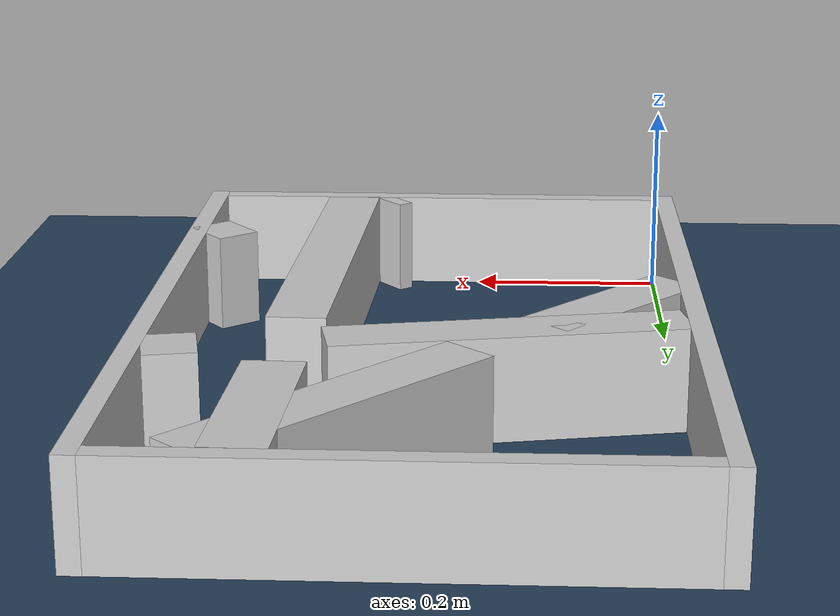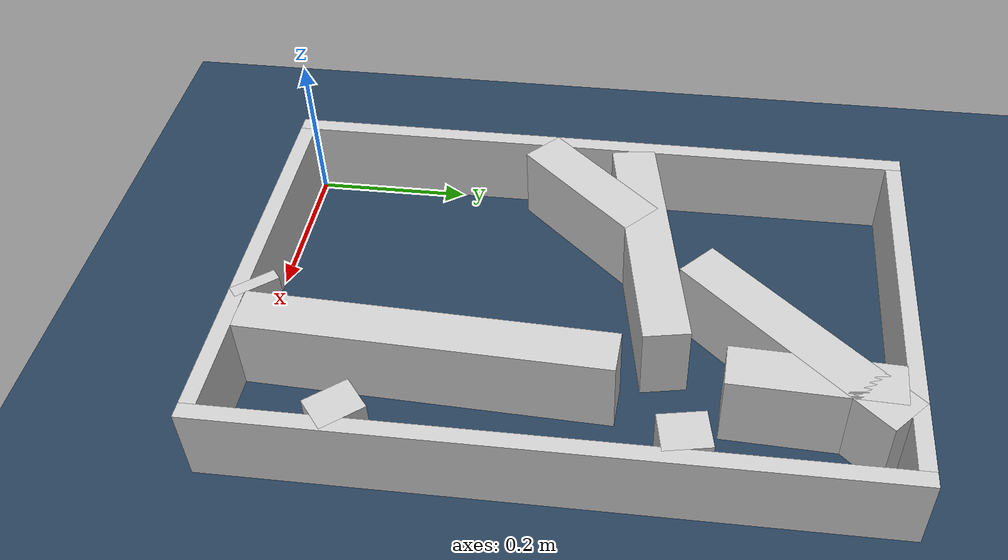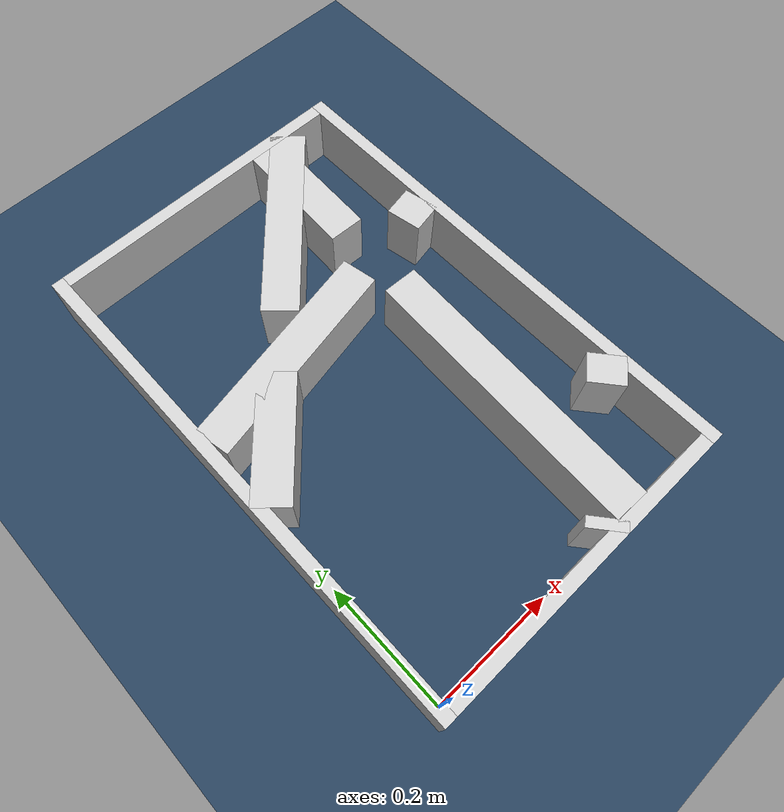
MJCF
<?xml version="1.0" ?>
<mujoco model="generated_real_template">
  <compiler angle="degree"/>
  <option timestep="0.002" integrator="implicitfast" iterations="100" cone="elliptic"/>
  <default>
    <geom density="1"/>
  </default>
  <asset>
    <texture builtin="gradient" height="3072" rgb1="0.3 0.5 0.7" rgb2="0 0 0" type="skybox" width="512"/>
    <texture builtin="checker" height="300" mark="edge" markrgb="0.8 0.8 0.8" name="groundplane" rgb1="0.2 0.3 0.4" rgb2="0.1 0.2 0.3" type="2d" width="300"/>
    <material name="groundplane" reflectance="0.2" texrepeat="5 5" texture="groundplane" texuniform="true"/>
  </asset>
  <worldbody>
    <light dir="0 0 -1" directional="true" pos="0 0 1.5"/>
    <geom name="floor" type="plane" condim="4" friction="0.5 0.005 0.001" material="groundplane" size="0 0 0.05"/>
    <body name="walls">
      <geom name="wall_boundary_left" type="box" condim="4" friction="1.0 0.005 0.0001" rgba="0.8 0.8 0.8 1" pos="-0.010000 0.387500 0.050000" euler="0 0 0.000000" size="0.010000 0.407500 0.050000"/>
      <geom name="wall_boundary_right" type="box" condim="4" friction="1.0 0.005 0.0001" rgba="0.8 0.8 0.8 1" pos="0.500000 0.387500 0.050000" euler="0 0 0.000000" size="0.010000 0.407500 0.050000"/>
      <geom name="wall_boundary_bottom" type="box" condim="4" friction="1.0 0.005 0.0001" rgba="0.8 0.8 0.8 1" pos="0.245000 -0.010000 0.050000" euler="0 0 0.000000" size="0.245000 0.010000 0.050000"/>
      <geom name="wall_boundary_top" type="box" condim="4" friction="1.0 0.005 0.0001" rgba="0.8 0.8 0.8 1" pos="0.245000 0.785000 0.050000" euler="0 0 0.000000" size="0.245000 0.010000 0.050000"/>
      <geom name="wall_inner_1_1" type="box" condim="4" friction="1.0 0.005 0.0001" rgba="0.8 0.8 0.8 1" pos="0.370588 0.673925 0.050000" euler="0 0 -92.299025" size="0.101156 0.028500 0.050000"/>
      <geom name="wall_inner_1_2" type="box" condim="4" friction="1.0 0.005 0.0001" rgba="0.8 0.8 0.8 1" pos="0.352600 0.225896 0.050000" euler="0 0 -92.299025" size="0.226078 0.028500 0.050000"/>
      <geom name="wall_inner_2_1" type="box" condim="4" friction="1.0 0.005 0.0001" rgba="0.8 0.8 0.8 1" pos="0.301470 0.007238 0.050000" euler="0 0 39.712752" size="0.008315 0.028500 0.050000"/>
      <geom name="wall_inner_2_2" type="box" condim="4" friction="1.0 0.005 0.0001" rgba="0.8 0.8 0.8 1" pos="0.472056 0.148925 0.050000" euler="0 0 39.712752" size="0.023327 0.028500 0.050000"/>
      <geom name="wall_inner_3_1" type="box" condim="4" friction="1.0 0.005 0.0001" rgba="0.8 0.8 0.8 1" pos="0.066935 0.388621 0.050000" euler="0 0 47.605129" size="0.097719 0.028500 0.050000"/>
      <geom name="wall_inner_3_2" type="box" condim="4" friction="1.0 0.005 0.0001" rgba="0.8 0.8 0.8 1" pos="0.309129 0.653905 0.050000" euler="0 0 47.605129" size="0.163970 0.028500 0.050000"/>
      <geom name="wall_inner_4_1" type="box" condim="4" friction="1.0 0.005 0.0001" rgba="0.8 0.8 0.8 1" pos="0.465593 0.531408 0.050000" euler="0 0 -168.862393" size="0.024876 0.028500 0.050000"/>
      <geom name="wall_inner_4_2" type="box" condim="4" friction="1.0 0.005 0.0001" rgba="0.8 0.8 0.8 1" pos="0.165007 0.472230 0.050000" euler="0 0 -168.862393" size="0.168174 0.028500 0.050000"/>
    </body>
  </worldbody>
</mujoco>
